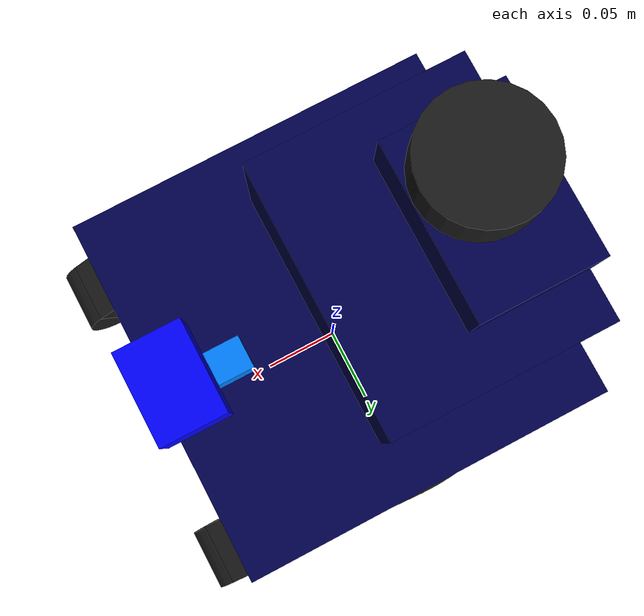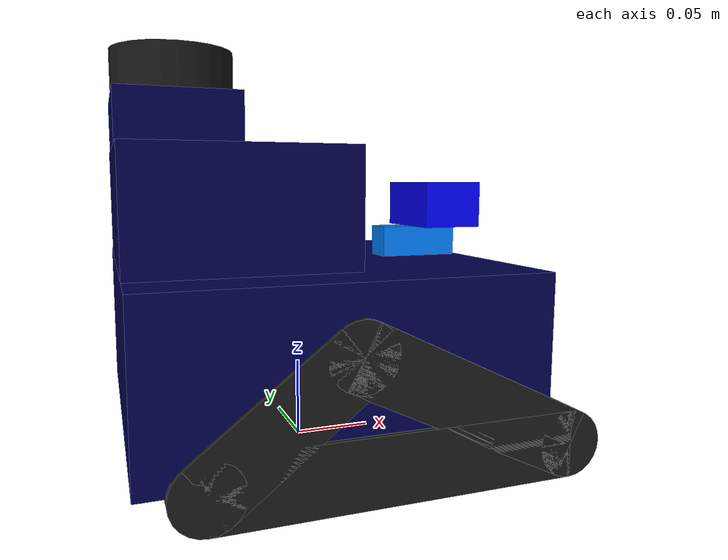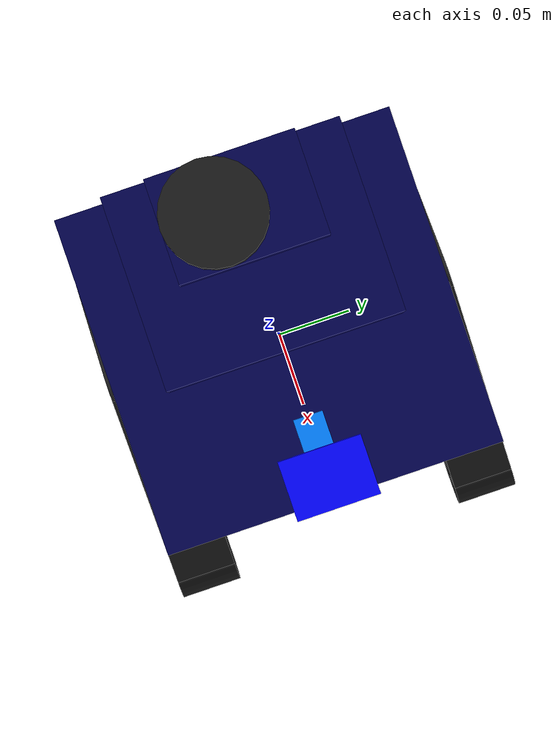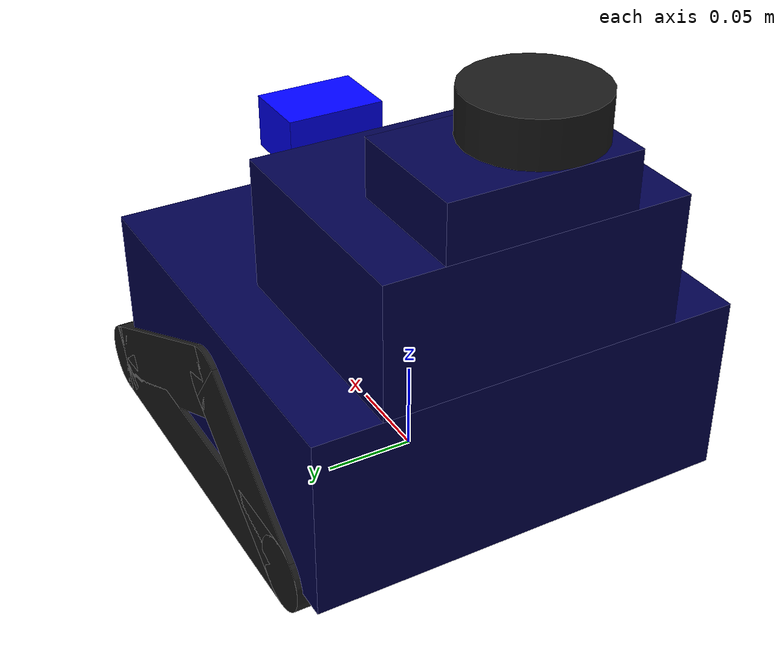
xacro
<?xml version="1.0"?>
<robot name="devastator" xmlns:xacro="http://www.ros.org/wiki/xacro">

  <xacro:include filename="$(find robot_devastator_description)/urdf/corps.xacro"/>
  <xacro:include filename="$(find robot_devastator_description)/urdf/roues.xacro"/>
  <xacro:include filename="$(find robot_devastator_description)/urdf/capteurs.xacro"/>
  <xacro:include filename="$(find robot_devastator_description)/urdf/devastator_gazebo.xacro"/>

</robot>

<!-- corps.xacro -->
<robot xmlns:xacro="http://www.ros.org/wiki/xacro">

  <!-- Dimensions du châssis (en mètres) -->
  <xacro:property name="chassis_longueur"       value="0.230"/>
  <xacro:property name="chassis_largeur"        value="0.230"/>
  <xacro:property name="chassis_hauteur"        value="0.098"/>
  <xacro:property name="base_link_hauteur_sol"  value="0.082"/>
  <xacro:property name="chassis_z_offset"       value="-0.011"/>
  <xacro:property name="masse_chassis"          value="1.9"/>

  <!-- Matériaux : définis une seule fois, référencés par nom ensuite -->
  <material name="bleu_fonce">
    <color rgba="0 0 0.3 1.0"/>
  </material>

  <material name="gris">
    <color rgba="0.8 0.8 0.8 1.0"/>
  </material>

  <!-- Repère sol — aucune géométrie visuelle -->
  <link name="base_footprint"/>

  <!-- Joint fixe entre le sol et l'axe central du robot -->
  <joint name="base_footprint_joint" type="fixed">
    <parent link="base_footprint"/>
    <child  link="base_link"/>
    <origin xyz="0 0 ${base_link_hauteur_sol}" rpy="0 0 0"/>
  </joint>

  <!-- Corps principal : boîte centrée sur base_link -->
  <link name="base_link">
    <visual>
      <geometry>
        <box size="${chassis_longueur} ${chassis_largeur} ${chassis_hauteur}"/>
      </geometry>
      <origin xyz="0 0 ${chassis_z_offset}" rpy="0 0 0"/>
      <material name="bleu_fonce"/>
    </visual>
    <collision>
      <geometry>
        <box size="${chassis_longueur} ${chassis_largeur} ${chassis_hauteur}"/>
      </geometry>
      <origin xyz="0 0 ${chassis_z_offset}" rpy="0 0 0"/>
    </collision>
    <inertial>
      <mass value="${masse_chassis}"/>
      <inertia
        ixx="${masse_chassis*(chassis_largeur*chassis_largeur+chassis_hauteur*chassis_hauteur)/12}"
        iyy="${masse_chassis*(chassis_longueur*chassis_longueur+chassis_hauteur*chassis_hauteur)/12}"
        izz="${masse_chassis*(chassis_longueur*chassis_longueur+chassis_largeur*chassis_largeur)/12}"
        ixy="0" ixz="0" iyz="0"/>
    </inertial>
  </link>

</robot>

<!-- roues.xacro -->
<robot xmlns:xacro="http://www.ros.org/wiki/xacro">

  <!-- Dimensions des roues (en mètres) -->
  <xacro:property name="rayon_roue"   value="0.01966"/>
  <xacro:property name="largeur_roue" value="0.040"/>
  <!-- Demi-entraxe : chaque roue est à ±0.098 m de base_link -->
  <xacro:property name="y_roue"       value="0.098"/>

  <!-- Empattement d'une chenille : distances horizontales depuis le moyeu moteur -->
  <xacro:property name="empattement_arriere" value="0.080"/>
  <xacro:property name="empattement_avant"   value="0.128"/>

  <xacro:property name="masse_roue" value="0.1"/>

  <!-- Roues folles : même rayon que la roue menante (39,32 mm de diamètre) -->
  <!-- Centre à 20 mm du sol → décalage local = 0,020 - base_link_hauteur_sol (0,082) = -0,062 m -->
  <xacro:property name="z_folle" value="-0.062"/>

  <!-- Matériaux : définis une seule fois, référencés par nom ensuite -->
  <material name="argent">
    <color rgba="0.6 0.6 0.6 1.0"/>
  </material>

  <material name="orange">
    <color rgba="1.0 0.5 0.0 1.0"/>
  </material>

  <material name="noir">
    <color rgba="0.1 0.1 0.1 1.0"/>
  </material>

  <!-- Macro du visuel statique d'une chenille (fixed, ne bouge jamais) -->
  <!-- La rotation de π/2 autour de X oriente les cylindres sur l'axe Y -->
  <!-- La géométrie visuelle forme une chenille triangulaire : roue menante + 2 roues -->
  <!-- folles, reliées par 3 boîtes formant le contour (dont le brin horizontal au sol) -->
  <xacro:macro name="chenille" params="nom y_signe">
    <link name="${nom}_chenille">
      <visual>
        <geometry>
          <cylinder radius="${rayon_roue}" length="${largeur_roue}"/>
        </geometry>
        <origin xyz="0 0 0" rpy="${pi/2} 0 0"/>
        <material name="noir"/>
      </visual>
      <visual>
        <geometry>
          <cylinder radius="${rayon_roue}" length="${largeur_roue}"/>
        </geometry>
        <origin xyz="-${empattement_arriere} 0 ${z_folle}" rpy="${pi/2} 0 0"/>
        <material name="noir"/>
      </visual>
      <visual>
        <geometry>
          <cylinder radius="${rayon_roue}" length="${largeur_roue}"/>
        </geometry>
        <origin xyz="${empattement_avant} 0 ${z_folle}" rpy="${pi/2} 0 0"/>
        <material name="noir"/>
      </visual>
      <visual>
        <geometry>
          <box size="0.1012 ${largeur_roue} ${2*rayon_roue}"/>
        </geometry>
        <origin xyz="-0.040 0 ${z_folle/2}" rpy="0 2.4826 0"/>
        <material name="noir"/>
      </visual>
      <visual>
        <geometry>
          <box size="0.1422 ${largeur_roue} ${2*rayon_roue}"/>
        </geometry>
        <origin xyz="0.064 0 ${z_folle/2}" rpy="0 0.4512 0"/>
        <material name="noir"/>
      </visual>
      <visual>
        <geometry>
          <box size="0.208 ${largeur_roue} ${2*rayon_roue}"/>
        </geometry>
        <origin xyz="0.024 0 ${z_folle}" rpy="0 0 0"/>
        <material name="noir"/>
      </visual>
      <collision>
        <geometry>
          <sphere radius="${rayon_roue}"/>
        </geometry>
        <origin xyz="-${empattement_arriere} 0 ${z_folle}" rpy="0 0 0"/>
      </collision>
      <collision>
        <geometry>
          <sphere radius="${rayon_roue}"/>
        </geometry>
        <origin xyz="${empattement_avant} 0 ${z_folle}" rpy="0 0 0"/>
      </collision>
    </link>

    <joint name="${nom}_chenille_joint" type="fixed">
      <parent link="base_link"/>
      <child  link="${nom}_chenille"/>
      <origin xyz="0 ${y_signe * y_roue} 0" rpy="0 0 0"/>
    </joint>
  </xacro:macro>

  <!-- Macro de la roue fonctionnelle : invisible, tourne réellement autour de -->
  <!-- l'axe Y, contact au sol via une collision sphérique ponctuelle -->
  <xacro:macro name="roue" params="nom y_signe">
    <link name="${nom}_wheel">
      <collision>
        <geometry>
          <sphere radius="${rayon_roue}"/>
        </geometry>
        <origin xyz="0 0 0" rpy="0 0 0"/>
      </collision>
      <inertial>
        <mass value="${masse_roue}"/>
        <inertia
          ixx="${masse_roue*(3*rayon_roue*rayon_roue+largeur_roue*largeur_roue)/12}"
          iyy="${masse_roue*rayon_roue*rayon_roue/2}"
          izz="${masse_roue*(3*rayon_roue*rayon_roue+largeur_roue*largeur_roue)/12}"
          ixy="0" ixz="0" iyz="0"/>
      </inertial>
    </link>

    <joint name="${nom}_wheel_joint" type="continuous">
      <parent link="base_link"/>
      <child  link="${nom}_wheel"/>
      <origin xyz="0 ${y_signe * y_roue} ${z_folle}" rpy="0 0 0"/>
      <axis xyz="0 1 0"/>
    </joint>
  </xacro:macro>

  <xacro:chenille nom="left"  y_signe=" 1"/>
  <xacro:roue     nom="left"  y_signe=" 1"/>
  <xacro:chenille nom="right" y_signe="-1"/>
  <xacro:roue     nom="right" y_signe="-1"/>

</robot>

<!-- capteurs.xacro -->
<robot xmlns:xacro="http://www.ros.org/wiki/xacro">

  <!-- Position des capteurs (en mètres, relatifs à base_link) -->
  <!-- Empilement : sommet châssis (12,0 cm) → tourelle → sonar -->
  <!-- sonar_z = sommet tourelle (14,0 cm) + moitié hauteur sonar (1,5 cm) - base_link_hauteur_sol -->
  <xacro:property name="sonar_x"      value="0.100"/>
  <xacro:property name="sonar_z"      value="0.073"/>
  <!-- tourelle_z = sommet châssis (12,0 cm) + moitié hauteur tourelle (1,0 cm) - base_link_hauteur_sol -->
  <xacro:property name="tourelle_x"   value="0.0845"/>
  <xacro:property name="tourelle_z"   value="0.048"/>
  <!-- Position mesurée du RPLIDAR A1M8, relative à base_link -->
  <xacro:property name="laser_x"      value="-0.080"/>
  <xacro:property name="laser_y"      value="-0.015"/>
  <xacro:property name="laser_z"      value="0.150"/>

  <!-- Empilement du support lidar, sur le dessus du châssis, à l'arrière (X négatif) -->
  <!-- Dimensions des boîtes de support (en mètres) : L x P x H -->
  <xacro:property name="plateforme_lidar_longueur" value="0.130"/>
  <xacro:property name="plateforme_lidar_largeur"  value="0.160"/>
  <xacro:property name="plateforme_lidar_hauteur"  value="0.070"/>
  <xacro:property name="plateforme_lidar_x" value="-0.050"/>
  <!-- plateforme_lidar_z = sommet châssis (12,0 cm) + moitié hauteur plateforme (3,5 cm)
       - base_link_hauteur_sol -->
  <xacro:property name="plateforme_lidar_z" value="0.073"/>
  <xacro:property name="masse_plateforme_lidar" value="0.030"/>

  <xacro:property name="base_lidar_longueur" value="0.070"/>
  <xacro:property name="base_lidar_largeur"  value="0.100"/>
  <xacro:property name="base_lidar_hauteur"  value="0.030"/>
  <xacro:property name="base_lidar_x" value="-0.080"/>
  <!-- base_lidar_z = sommet plateforme_lidar (19,0 cm) + moitié hauteur base (1,5 cm)
       - base_link_hauteur_sol -->
  <xacro:property name="base_lidar_z" value="0.123"/>
  <xacro:property name="masse_base_lidar" value="0.010"/>

  <!-- Dimensions du RPLIDAR A1M8, mesures directes sur le robot réel -->
  <xacro:property name="laser_rayon"    value="0.035"/>
  <xacro:property name="laser_longueur" value="0.024"/>
  <xacro:property name="masse_laser"    value="0.190"/>

  <xacro:property name="masse_sonar"  value="0.010"/>

  <!-- Matériaux : définis une seule fois, référencés par nom ensuite -->
  <material name="bleu">
    <color rgba="0.0 0.0 1.0 1.0"/>
  </material>

  <material name="bleu_pale">
    <color rgba="0.0 0.5 1.0 1.0"/>
  </material>

  <!-- "gris" et "bleu_fonce" sont déjà définis dans corps.xacro, "noir" dans roues.xacro :
       réutilisés tels quels -->

  <!-- Sonar HC-SR04 : petite boîte bleue à l'avant -->
  <!-- Dimensions : 40 mm x 56 mm x 30 mm (p x l x h) -->
  <link name="sonar_link">
    <visual>
      <geometry>
        <box size="0.040 0.056 0.030"/>
      </geometry>
      <material name="bleu"/>
    </visual>
    <collision>
      <geometry>
        <box size="0.040 0.056 0.030"/>
      </geometry>
    </collision>
    <inertial>
      <mass value="${masse_sonar}"/>
      <inertia
        ixx="${masse_sonar*(0.056*0.056+0.030*0.030)/12}"
        iyy="${masse_sonar*(0.040*0.040+0.030*0.030)/12}"
        izz="${masse_sonar*(0.040*0.040+0.056*0.056)/12}"
        ixy="0" ixz="0" iyz="0"/>
    </inertial>
  </link>

  <joint name="sonar_joint" type="revolute">
    <parent link="base_link"/>
    <child  link="sonar_link"/>
    <origin xyz="${sonar_x} 0 ${sonar_z}" rpy="0 0 0"/>
    <axis xyz="0 0 1"/>
    <limit effort="100" velocity="100" lower="-0.78539" upper="0.78539"/>
  </joint>

  <!-- Tourelle servo : petite boîte rouge au centre -->
  <!-- Dimensions : 53 mm x 20 mm x 20 mm (p x l x h) -->
  <link name="tourelle_link">
    <visual>
      <geometry>
        <box size="0.053 0.020 0.020"/>
      </geometry>
      <material name="bleu_pale"/>
    </visual>
  </link>

  <joint name="tourelle_joint" type="fixed">
    <parent link="base_link"/>
    <child  link="tourelle_link"/>
    <origin xyz="${tourelle_x} 0 ${tourelle_z}" rpy="0 0 0"/>
  </joint>

  <!-- RPLIDAR A1M8 : cylindre gris sur le dessus du châssis -->
  <!-- Dimensions mesurées directement sur le robot réel : rayon 35 mm (diamètre 70 mm),
       hauteur 24 mm -->
  <link name="laser_link">
    <visual>
      <geometry>
        <cylinder radius="${laser_rayon}" length="${laser_longueur}"/>
      </geometry>
      <material name="noir"/>
    </visual>
    <collision>
      <geometry>
        <cylinder radius="${laser_rayon}" length="${laser_longueur}"/>
      </geometry>
    </collision>
    <inertial>
      <mass value="${masse_laser}"/>
      <inertia
        ixx="${masse_laser*(3*laser_rayon*laser_rayon+laser_longueur*laser_longueur)/12}"
        iyy="${masse_laser*(3*laser_rayon*laser_rayon+laser_longueur*laser_longueur)/12}"
        izz="${masse_laser*laser_rayon*laser_rayon/2}"
        ixy="0" ixz="0" iyz="0"/>
    </inertial>
  </link>

  <joint name="laser_joint" type="fixed">
    <parent link="base_link"/>
    <child  link="laser_link"/>
    <origin xyz="${laser_x} ${laser_y} ${laser_z}" rpy="0 0 0"/>
  </joint>

  <!-- Plateforme lidar : boîte de support posée sur le dessus du châssis, fond aligné sur
       l'arrière du châssis (X négatif), centrée en Y -->
  <!-- Dimensions physiques mesurées : longueur (avant-arrière, axe X), largeur (axe Y) -->
  <link name="plateforme_lidar_link">
    <visual>
      <geometry>
        <box size="${plateforme_lidar_longueur} ${plateforme_lidar_largeur} ${plateforme_lidar_hauteur}"/>
      </geometry>
      <material name="bleu_fonce"/>
    </visual>
    <collision>
      <geometry>
        <box size="${plateforme_lidar_longueur} ${plateforme_lidar_largeur} ${plateforme_lidar_hauteur}"/>
      </geometry>
    </collision>
    <!-- Masse non mesurée, valeur symbolique -->
    <inertial>
      <mass value="${masse_plateforme_lidar}"/>
      <inertia
        ixx="${masse_plateforme_lidar*(plateforme_lidar_largeur*plateforme_lidar_largeur+plateforme_lidar_hauteur*plateforme_lidar_hauteur)/12}"
        iyy="${masse_plateforme_lidar*(plateforme_lidar_longueur*plateforme_lidar_longueur+plateforme_lidar_hauteur*plateforme_lidar_hauteur)/12}"
        izz="${masse_plateforme_lidar*(plateforme_lidar_longueur*plateforme_lidar_longueur+plateforme_lidar_largeur*plateforme_lidar_largeur)/12}"
        ixy="0" ixz="0" iyz="0"/>
    </inertial>
  </link>

  <joint name="plateforme_lidar_joint" type="fixed">
    <parent link="base_link"/>
    <child  link="plateforme_lidar_link"/>
    <origin xyz="${plateforme_lidar_x} 0 ${plateforme_lidar_z}" rpy="0 0 0"/>
  </joint>

  <!-- Base lidar : boîte de support posée sur le dessus de plateforme_lidar_link, fond aligné
       sur l'arrière du châssis comme plateforme_lidar_link, centrée en Y -->
  <!-- Dimensions physiques mesurées : longueur (avant-arrière, axe X), largeur (axe Y) -->
  <link name="base_lidar_link">
    <visual>
      <geometry>
        <box size="${base_lidar_longueur} ${base_lidar_largeur} ${base_lidar_hauteur}"/>
      </geometry>
      <material name="bleu_fonce"/>
    </visual>
    <collision>
      <geometry>
        <box size="${base_lidar_longueur} ${base_lidar_largeur} ${base_lidar_hauteur}"/>
      </geometry>
    </collision>
    <!-- Masse non mesurée, valeur symbolique -->
    <inertial>
      <mass value="${masse_base_lidar}"/>
      <inertia
        ixx="${masse_base_lidar*(base_lidar_largeur*base_lidar_largeur+base_lidar_hauteur*base_lidar_hauteur)/12}"
        iyy="${masse_base_lidar*(base_lidar_longueur*base_lidar_longueur+base_lidar_hauteur*base_lidar_hauteur)/12}"
        izz="${masse_base_lidar*(base_lidar_longueur*base_lidar_longueur+base_lidar_largeur*base_lidar_largeur)/12}"
        ixy="0" ixz="0" iyz="0"/>
    </inertial>
  </link>

  <joint name="base_lidar_joint" type="fixed">
    <parent link="base_link"/>
    <child  link="base_lidar_link"/>
    <origin xyz="${base_lidar_x} 0 ${base_lidar_z}" rpy="0 0 0"/>
  </joint>

</robot>
